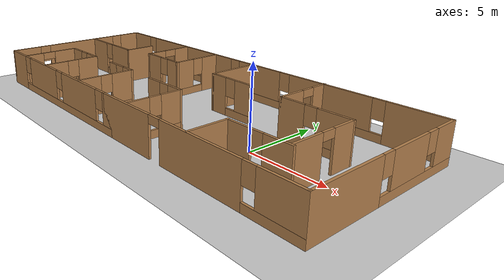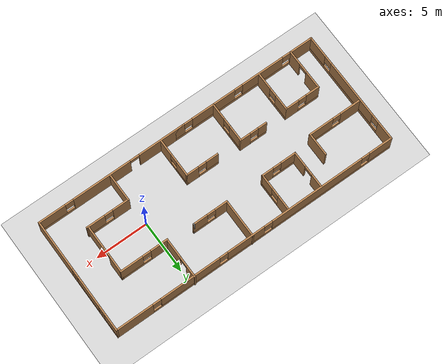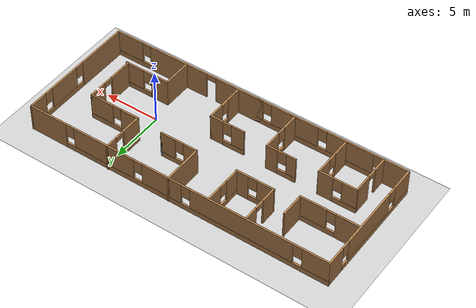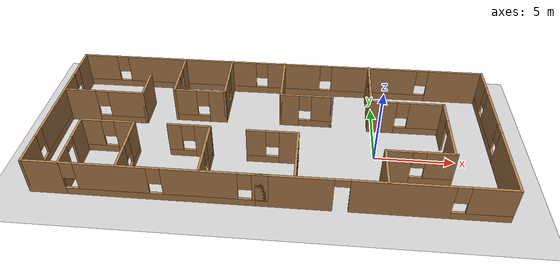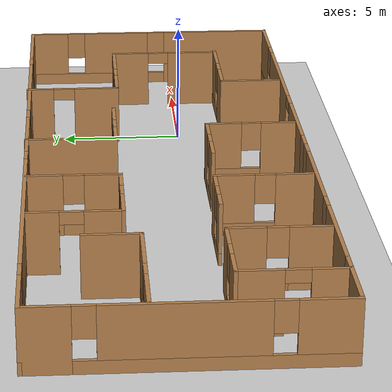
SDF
<sdf version="1.7">
 <world name="default">
  <model name="ground_plane">
   <static>1</static>
   <link name="link">
    <collision name="collision">
     <geometry><plane><normal>0 0 1</normal><size>100 100</size></plane></geometry>
     <surface><friction><ode><mu>100</mu><mu2>50</mu2></ode></friction></surface>
    </collision>
    <visual name="visual">
     <cast_shadows>0</cast_shadows>
     <geometry><plane><normal>0 0 1</normal><size>100 100</size></plane></geometry>
     <material>
      <script><uri>file://media/materials/scripts/gazebo.material</uri><name>Gazebo/Grey</name></script>
     </material>
    </visual>
   </link>
  </model>
  <model name="Building">
   <pose>-6.555 0.971968 0 0 -0 0</pose>
   <link name="Wall_0">
    <pose>6.75 -5.58197 0 0 -0 0</pose>
    <visual name="Wall_0_Visual_0">
     <pose>-5.03607 0 1.25 0 -0 0</pose>
     <geometry><box><size>4.42786 0.15 2.5</size></box></geometry>
     <material>
      <script><uri>file://media/materials/scripts/gazebo.material</uri><name>Gazebo/Wood</name></script>
      <ambient>1 1 1 1</ambient>
     </material>
     <meta><layer>0</layer></meta>
    </visual>
    <collision name="Wall_0_Collision_0">
     <geometry><box><size>4.42786 0.15 2.5</size></box></geometry>
     <pose>-5.03607 0 1.25 0 -0 0</pose>
    </collision>
    <visual name="Wall_0_Visual_1">
     <pose>0.941682 0 1.25 0 -0 0</pose>
     <geometry><box><size>5.72765 0.15 2.5</size></box></geometry>
     <material>
      <script><uri>file://media/materials/scripts/gazebo.material</uri><name>Gazebo/Wood</name></script>
      <ambient>1 1 1 1</ambient>
     </material>
     <meta><layer>0</layer></meta>
    </visual>
    <collision name="Wall_0_Collision_1">
     <geometry><box><size>5.72765 0.15 2.5</size></box></geometry>
     <pose>0.941682 0 1.25 0 -0 0</pose>
    </collision>
    <visual name="Wall_0_Visual_2">
     <pose>5.52775 0 0.25 0 -0 0</pose>
     <geometry><box><size>3.44449 0.15 0.5</size></box></geometry>
     <material>
      <script><uri>file://media/materials/scripts/gazebo.material</uri><name>Gazebo/Wood</name></script>
      <ambient>1 1 1 1</ambient>
     </material>
     <meta><layer>0</layer></meta>
    </visual>
    <collision name="Wall_0_Collision_2">
     <geometry><box><size>3.44449 0.15 0.5</size></box></geometry>
     <pose>5.52775 0 0.25 0 -0 0</pose>
    </collision>
    <visual name="Wall_0_Visual_3">
     <pose>5.92775 0 1.5 0 -0 0</pose>
     <geometry><box><size>2.64449 0.15 2</size></box></geometry>
     <material>
      <script><uri>file://media/materials/scripts/gazebo.material</uri><name>Gazebo/Wood</name></script>
      <ambient>1 1 1 1</ambient>
     </material>
     <meta><layer>0</layer></meta>
    </visual>
    <collision name="Wall_0_Collision_3">
     <geometry><box><size>2.64449 0.15 2</size></box></geometry>
     <pose>5.92775 0 1.5 0 -0 0</pose>
    </collision>
    <visual name="Wall_0_Visual_4">
     <pose>4.20551 0 1.9 0 -0 0</pose>
     <geometry><box><size>0.8 0.15 1.2</size></box></geometry>
     <material>
      <script><uri>file://media/materials/scripts/gazebo.material</uri><name>Gazebo/Wood</name></script>
      <ambient>1 1 1 1</ambient>
     </material>
     <meta><layer>0</layer></meta>
    </visual>
    <collision name="Wall_0_Collision_4">
     <geometry><box><size>0.8 0.15 1.2</size></box></geometry>
     <pose>4.20551 0 1.9 0 -0 0</pose>
    </collision>
    <visual name="Wall_0_Visual_5">
     <pose>-2.37214 0 2.25 0 -0 0</pose>
     <geometry><box><size>0.9 0.15 0.5</size></box></geometry>
     <material>
      <script><uri>file://media/materials/scripts/gazebo.material</uri><name>Gazebo/Wood</name></script>
      <ambient>1 1 1 1</ambient>
     </material>
     <meta><layer>0</layer></meta>
    </visual>
    <collision name="Wall_0_Collision_5">
     <geometry><box><size>0.9 0.15 0.5</size></box></geometry>
     <pose>-2.37214 0 2.25 0 -0 0</pose>
    </collision>
   </link>
   <link name="Wall_10">
    <pose>-8.40885 -3.60792 0 0 -0 1.5708</pose>
    <visual name="Wall_10_Visual_0">
     <pose>-1.16004 0 1.25 0 -0 0</pose>
     <geometry><box><size>1.67992 0.15 2.5</size></box></geometry>
     <material>
      <script><uri>file://media/materials/scripts/gazebo.material</uri><name>Gazebo/Wood</name></script>
      <ambient>1 1 1 1</ambient>
     </material>
     <meta><layer>0</layer></meta>
    </visual>
    <collision name="Wall_10_Collision_0">
     <geometry><box><size>1.67992 0.15 2.5</size></box></geometry>
     <pose>-1.16004 0 1.25 0 -0 0</pose>
    </collision>
    <visual name="Wall_10_Visual_1">
     <pose>0.839961 0 0.25 0 -0 0</pose>
     <geometry><box><size>2.32008 0.15 0.5</size></box></geometry>
     <material>
      <script><uri>file://media/materials/scripts/gazebo.material</uri><name>Gazebo/Wood</name></script>
      <ambient>1 1 1 1</ambient>
     </material>
     <meta><layer>0</layer></meta>
    </visual>
    <collision name="Wall_10_Collision_1">
     <geometry><box><size>2.32008 0.15 0.5</size></box></geometry>
     <pose>0.839961 0 0.25 0 -0 0</pose>
    </collision>
    <visual name="Wall_10_Visual_2">
     <pose>1.23996 0 1.5 0 -0 0</pose>
     <geometry><box><size>1.52008 0.15 2</size></box></geometry>
     <material>
      <script><uri>file://media/materials/scripts/gazebo.material</uri><name>Gazebo/Wood</name></script>
      <ambient>1 1 1 1</ambient>
     </material>
     <meta><layer>0</layer></meta>
    </visual>
    <collision name="Wall_10_Collision_2">
     <geometry><box><size>1.52008 0.15 2</size></box></geometry>
     <pose>1.23996 0 1.5 0 -0 0</pose>
    </collision>
    <visual name="Wall_10_Visual_3">
     <pose>0.079921 0 1.9 0 -0 0</pose>
     <geometry><box><size>0.8 0.15 1.2</size></box></geometry>
     <material>
      <script><uri>file://media/materials/scripts/gazebo.material</uri><name>Gazebo/Wood</name></script>
      <ambient>1 1 1 1</ambient>
     </material>
     <meta><layer>0</layer></meta>
    </visual>
    <collision name="Wall_10_Collision_3">
     <geometry><box><size>0.8 0.15 1.2</size></box></geometry>
     <pose>0.079921 0 1.9 0 -0 0</pose>
    </collision>
   </link>
   <link name="Wall_11">
    <pose>-10.0839 -1.68291 0 0 -0 3.14159</pose>
    <visual name="Wall_11_Visual_0">
     <pose>-1.07939 0 1.25 0 -0 0</pose>
     <geometry><box><size>1.34122 0.15 2.5</size></box></geometry>
     <material>
      <script><uri>file://media/materials/scripts/gazebo.material</uri><name>Gazebo/Wood</name></script>
      <ambient>1 1 1 1</ambient>
     </material>
     <meta><layer>0</layer></meta>
    </visual>
    <collision name="Wall_11_Collision_0">
     <geometry><box><size>1.34122 0.15 2.5</size></box></geometry>
     <pose>-1.07939 0 1.25 0 -0 0</pose>
    </collision>
    <visual name="Wall_11_Visual_1">
     <pose>0.670607 0 0.25 0 -0 0</pose>
     <geometry><box><size>2.15878 0.15 0.5</size></box></geometry>
     <material>
      <script><uri>file://media/materials/scripts/gazebo.material</uri><name>Gazebo/Wood</name></script>
      <ambient>1 1 1 1</ambient>
     </material>
     <meta><layer>0</layer></meta>
    </visual>
    <collision name="Wall_11_Collision_1">
     <geometry><box><size>2.15878 0.15 0.5</size></box></geometry>
     <pose>0.670607 0 0.25 0 -0 0</pose>
    </collision>
    <visual name="Wall_11_Visual_2">
     <pose>1.07061 0 1.5 0 -0 0</pose>
     <geometry><box><size>1.35878 0.15 2</size></box></geometry>
     <material>
      <script><uri>file://media/materials/scripts/gazebo.material</uri><name>Gazebo/Wood</name></script>
      <ambient>1 1 1 1</ambient>
     </material>
     <meta><layer>0</layer></meta>
    </visual>
    <collision name="Wall_11_Collision_2">
     <geometry><box><size>1.35878 0.15 2</size></box></geometry>
     <pose>1.07061 0 1.5 0 -0 0</pose>
    </collision>
    <visual name="Wall_11_Visual_3">
     <pose>-0.008785 0 1.9 0 -0 0</pose>
     <geometry><box><size>0.8 0.15 1.2</size></box></geometry>
     <material>
      <script><uri>file://media/materials/scripts/gazebo.material</uri><name>Gazebo/Wood</name></script>
      <ambient>1 1 1 1</ambient>
     </material>
     <meta><layer>0</layer></meta>
    </visual>
    <collision name="Wall_11_Collision_3">
     <geometry><box><size>0.8 0.15 1.2</size></box></geometry>
     <pose>-0.008785 0 1.9 0 -0 0</pose>
    </collision>
   </link>
   <link name="Wall_13">
    <pose>-3.67474 -3.60792 0 0 -0 1.5708</pose>
    <visual name="Wall_13_Visual_0">
     <pose>-1.20478 0 1.25 0 -0 0</pose>
     <geometry><box><size>1.59043 0.15 2.5</size></box></geometry>
     <material>
      <script><uri>file://media/materials/scripts/gazebo.material</uri><name>Gazebo/Wood</name></script>
      <ambient>1 1 1 1</ambient>
     </material>
     <meta><layer>0</layer></meta>
    </visual>
    <collision name="Wall_13_Collision_0">
     <geometry><box><size>1.59043 0.15 2.5</size></box></geometry>
     <pose>-1.20478 0 1.25 0 -0 0</pose>
    </collision>
    <visual name="Wall_13_Visual_1">
     <pose>0.795215 0 0.25 0 -0 0</pose>
     <geometry><box><size>2.40957 0.15 0.5</size></box></geometry>
     <material>
      <script><uri>file://media/materials/scripts/gazebo.material</uri><name>Gazebo/Wood</name></script>
      <ambient>1 1 1 1</ambient>
     </material>
     <meta><layer>0</layer></meta>
    </visual>
    <collision name="Wall_13_Collision_1">
     <geometry><box><size>2.40957 0.15 0.5</size></box></geometry>
     <pose>0.795215 0 0.25 0 -0 0</pose>
    </collision>
    <visual name="Wall_13_Visual_2">
     <pose>1.19521 0 1.5 0 -0 0</pose>
     <geometry><box><size>1.60957 0.15 2</size></box></geometry>
     <material>
      <script><uri>file://media/materials/scripts/gazebo.material</uri><name>Gazebo/Wood</name></script>
      <ambient>1 1 1 1</ambient>
     </material>
     <meta><layer>0</layer></meta>
    </visual>
    <collision name="Wall_13_Collision_2">
     <geometry><box><size>1.60957 0.15 2</size></box></geometry>
     <pose>1.19521 0 1.5 0 -0 0</pose>
    </collision>
    <visual name="Wall_13_Visual_3">
     <pose>-0.009571 0 1.9 0 -0 0</pose>
     <geometry><box><size>0.8 0.15 1.2</size></box></geometry>
     <material>
      <script><uri>file://media/materials/scripts/gazebo.material</uri><name>Gazebo/Wood</name></script>
      <ambient>1 1 1 1</ambient>
     </material>
     <meta><layer>0</layer></meta>
    </visual>
    <collision name="Wall_13_Collision_3">
     <geometry><box><size>0.8 0.15 1.2</size></box></geometry>
     <pose>-0.009571 0 1.9 0 -0 0</pose>
    </collision>
   </link>
   <link name="Wall_14">
    <pose>-4.97474 -1.68291 0 0 -0 3.14159</pose>
    <visual name="Wall_14_Visual_0">
     <pose>-0.843105 0 1.25 0 -0 0</pose>
     <geometry><box><size>1.06379 0.15 2.5</size></box></geometry>
     <material>
      <script><uri>file://media/materials/scripts/gazebo.material</uri><name>Gazebo/Wood</name></script>
      <ambient>1 1 1 1</ambient>
     </material>
     <meta><layer>0</layer></meta>
    </visual>
    <collision name="Wall_14_Collision_0">
     <geometry><box><size>1.06379 0.15 2.5</size></box></geometry>
     <pose>-0.843105 0 1.25 0 -0 0</pose>
    </collision>
    <visual name="Wall_14_Visual_1">
     <pose>0.531895 0 0.25 0 -0 0</pose>
     <geometry><box><size>1.68621 0.15 0.5</size></box></geometry>
     <material>
      <script><uri>file://media/materials/scripts/gazebo.material</uri><name>Gazebo/Wood</name></script>
      <ambient>1 1 1 1</ambient>
     </material>
     <meta><layer>0</layer></meta>
    </visual>
    <collision name="Wall_14_Collision_1">
     <geometry><box><size>1.68621 0.15 0.5</size></box></geometry>
     <pose>0.531895 0 0.25 0 -0 0</pose>
    </collision>
    <visual name="Wall_14_Visual_2">
     <pose>0.931895 0 1.5 0 -0 0</pose>
     <geometry><box><size>0.886209 0.15 2</size></box></geometry>
     <material>
      <script><uri>file://media/materials/scripts/gazebo.material</uri><name>Gazebo/Wood</name></script>
      <ambient>1 1 1 1</ambient>
     </material>
     <meta><layer>0</layer></meta>
    </visual>
    <collision name="Wall_14_Collision_2">
     <geometry><box><size>0.886209 0.15 2</size></box></geometry>
     <pose>0.931895 0 1.5 0 -0 0</pose>
    </collision>
    <visual name="Wall_14_Visual_3">
     <pose>0.088791 0 1.9 0 -0 0</pose>
     <geometry><box><size>0.8 0.15 1.2</size></box></geometry>
     <material>
      <script><uri>file://media/materials/scripts/gazebo.material</uri><name>Gazebo/Wood</name></script>
      <ambient>1 1 1 1</ambient>
     </material>
     <meta><layer>0</layer></meta>
    </visual>
    <collision name="Wall_14_Collision_3">
     <geometry><box><size>0.8 0.15 1.2</size></box></geometry>
     <pose>0.088791 0 1.9 0 -0 0</pose>
    </collision>
   </link>
   <link name="Wall_16">
    <pose>1.72833 -3.63 0 0 -0 1.5708</pose>
    <visual name="Wall_16_Visual_0">
     <pose>-1.15362 0 1.25 0 -0 0</pose>
     <geometry><box><size>1.44277 0.15 2.5</size></box></geometry>
     <material>
      <script><uri>file://media/materials/scripts/gazebo.material</uri><name>Gazebo/Wood</name></script>
      <ambient>1 1 1 1</ambient>
     </material>
     <meta><layer>0</layer></meta>
    </visual>
    <collision name="Wall_16_Collision_0">
     <geometry><box><size>1.44277 0.15 2.5</size></box></geometry>
     <pose>-1.15362 0 1.25 0 -0 0</pose>
    </collision>
    <visual name="Wall_16_Visual_1">
     <pose>0.721384 0 0.25 0 -0 0</pose>
     <geometry><box><size>2.30723 0.15 0.5</size></box></geometry>
     <material>
      <script><uri>file://media/materials/scripts/gazebo.material</uri><name>Gazebo/Wood</name></script>
      <ambient>1 1 1 1</ambient>
     </material>
     <meta><layer>0</layer></meta>
    </visual>
    <collision name="Wall_16_Collision_1">
     <geometry><box><size>2.30723 0.15 0.5</size></box></geometry>
     <pose>0.721384 0 0.25 0 -0 0</pose>
    </collision>
    <visual name="Wall_16_Visual_2">
     <pose>1.12138 0 1.5 0 -0 0</pose>
     <geometry><box><size>1.50723 0.15 2</size></box></geometry>
     <material>
      <script><uri>file://media/materials/scripts/gazebo.material</uri><name>Gazebo/Wood</name></script>
      <ambient>1 1 1 1</ambient>
     </material>
     <meta><layer>0</layer></meta>
    </visual>
    <collision name="Wall_16_Collision_2">
     <geometry><box><size>1.50723 0.15 2</size></box></geometry>
     <pose>1.12138 0 1.5 0 -0 0</pose>
    </collision>
    <visual name="Wall_16_Visual_3">
     <pose>-0.032232 0 1.9 0 -0 0</pose>
     <geometry><box><size>0.8 0.15 1.2</size></box></geometry>
     <material>
      <script><uri>file://media/materials/scripts/gazebo.material</uri><name>Gazebo/Wood</name></script>
      <ambient>1 1 1 1</ambient>
     </material>
     <meta><layer>0</layer></meta>
    </visual>
    <collision name="Wall_16_Collision_3">
     <geometry><box><size>0.8 0.15 1.2</size></box></geometry>
     <pose>-0.032232 0 1.9 0 -0 0</pose>
    </collision>
   </link>
   <link name="Wall_17">
    <pose>0.17833 -1.83 0 0 -0 3.14159</pose>
    <visual name="Wall_17_Visual_0">
     <pose>-1.00921 0 1.25 0 -0 0</pose>
     <geometry><box><size>1.23159 0.15 2.5</size></box></geometry>
     <material>
      <script><uri>file://media/materials/scripts/gazebo.material</uri><name>Gazebo/Wood</name></script>
      <ambient>1 1 1 1</ambient>
     </material>
     <meta><layer>0</layer></meta>
    </visual>
    <collision name="Wall_17_Collision_0">
     <geometry><box><size>1.23159 0.15 2.5</size></box></geometry>
     <pose>-1.00921 0 1.25 0 -0 0</pose>
    </collision>
    <visual name="Wall_17_Visual_1">
     <pose>0.615794 0 0.25 0 -0 0</pose>
     <geometry><box><size>2.01841 0.15 0.5</size></box></geometry>
     <material>
      <script><uri>file://media/materials/scripts/gazebo.material</uri><name>Gazebo/Wood</name></script>
      <ambient>1 1 1 1</ambient>
     </material>
     <meta><layer>0</layer></meta>
    </visual>
    <collision name="Wall_17_Collision_1">
     <geometry><box><size>2.01841 0.15 0.5</size></box></geometry>
     <pose>0.615794 0 0.25 0 -0 0</pose>
    </collision>
    <visual name="Wall_17_Visual_2">
     <pose>1.01579 0 1.5 0 -0 0</pose>
     <geometry><box><size>1.21841 0.15 2</size></box></geometry>
     <material>
      <script><uri>file://media/materials/scripts/gazebo.material</uri><name>Gazebo/Wood</name></script>
      <ambient>1 1 1 1</ambient>
     </material>
     <meta><layer>0</layer></meta>
    </visual>
    <collision name="Wall_17_Collision_2">
     <geometry><box><size>1.21841 0.15 2</size></box></geometry>
     <pose>1.01579 0 1.5 0 -0 0</pose>
    </collision>
    <visual name="Wall_17_Visual_3">
     <pose>0.006588 0 1.9 0 -0 0</pose>
     <geometry><box><size>0.8 0.15 1.2</size></box></geometry>
     <material>
      <script><uri>file://media/materials/scripts/gazebo.material</uri><name>Gazebo/Wood</name></script>
      <ambient>1 1 1 1</ambient>
     </material>
     <meta><layer>0</layer></meta>
    </visual>
    <collision name="Wall_17_Collision_3">
     <geometry><box><size>0.8 0.15 1.2</size></box></geometry>
     <pose>0.006588 0 1.9 0 -0 0</pose>
    </collision>
   </link>
   <link name="Wall_19">
    <pose>-11.2105 1.31097 0 0 -0 0</pose>
    <visual name="Wall_19_Visual_0">
     <pose>-1.61599 0 1.25 0 -0 0</pose>
     <geometry><box><size>2.01802 0.15 2.5</size></box></geometry>
     <material>
      <script><uri>file://media/materials/scripts/gazebo.material</uri><name>Gazebo/Wood</name></script>
      <ambient>1 1 1 1</ambient>
     </material>
     <meta><layer>0</layer></meta>
    </visual>
    <collision name="Wall_19_Collision_0">
     <geometry><box><size>2.01802 0.15 2.5</size></box></geometry>
     <pose>-1.61599 0 1.25 0 -0 0</pose>
    </collision>
    <visual name="Wall_19_Visual_1">
     <pose>1.00901 0 0.25 0 -0 0</pose>
     <geometry><box><size>3.23198 0.15 0.5</size></box></geometry>
     <material>
      <script><uri>file://media/materials/scripts/gazebo.material</uri><name>Gazebo/Wood</name></script>
      <ambient>1 1 1 1</ambient>
     </material>
     <meta><layer>0</layer></meta>
    </visual>
    <collision name="Wall_19_Collision_1">
     <geometry><box><size>3.23198 0.15 0.5</size></box></geometry>
     <pose>1.00901 0 0.25 0 -0 0</pose>
    </collision>
    <visual name="Wall_19_Visual_2">
     <pose>1.40901 0 1.5 0 -0 0</pose>
     <geometry><box><size>2.43198 0.15 2</size></box></geometry>
     <material>
      <script><uri>file://media/materials/scripts/gazebo.material</uri><name>Gazebo/Wood</name></script>
      <ambient>1 1 1 1</ambient>
     </material>
     <meta><layer>0</layer></meta>
    </visual>
    <collision name="Wall_19_Collision_2">
     <geometry><box><size>2.43198 0.15 2</size></box></geometry>
     <pose>1.40901 0 1.5 0 -0 0</pose>
    </collision>
    <visual name="Wall_19_Visual_3">
     <pose>-0.206982 0 1.9 0 -0 0</pose>
     <geometry><box><size>0.8 0.15 1.2</size></box></geometry>
     <material>
      <script><uri>file://media/materials/scripts/gazebo.material</uri><name>Gazebo/Wood</name></script>
      <ambient>1 1 1 1</ambient>
     </material>
     <meta><layer>0</layer></meta>
    </visual>
    <collision name="Wall_19_Collision_3">
     <geometry><box><size>0.8 0.15 1.2</size></box></geometry>
     <pose>-0.206982 0 1.9 0 -0 0</pose>
    </collision>
   </link>
   <link name="Wall_2">
    <pose>13.925 -0.031968 0 0 -0 1.5708</pose>
    <visual name="Wall_2_Visual_0">
     <pose>-3.17203 0 1.25 0 -0 0</pose>
     <geometry><box><size>4.90593 0.15 2.5</size></box></geometry>
     <material>
      <script><uri>file://media/materials/scripts/gazebo.material</uri><name>Gazebo/Wood</name></script>
      <ambient>1 1 1 1</ambient>
     </material>
     <meta><layer>0</layer></meta>
    </visual>
    <collision name="Wall_2_Collision_0">
     <geometry><box><size>4.90593 0.15 2.5</size></box></geometry>
     <pose>-3.17203 0 1.25 0 -0 0</pose>
    </collision>
    <visual name="Wall_2_Visual_1">
     <pose>2.45297 0 0.25 0 -0 0</pose>
     <geometry><box><size>6.34407 0.15 0.5</size></box></geometry>
     <material>
      <script><uri>file://media/materials/scripts/gazebo.material</uri><name>Gazebo/Wood</name></script>
      <ambient>1 1 1 1</ambient>
     </material>
     <meta><layer>0</layer></meta>
    </visual>
    <collision name="Wall_2_Collision_1">
     <geometry><box><size>6.34407 0.15 0.5</size></box></geometry>
     <pose>2.45297 0 0.25 0 -0 0</pose>
    </collision>
    <visual name="Wall_2_Visual_2">
     <pose>1.58263 0 1.5 0 -0 0</pose>
     <geometry><box><size>3.0034 0.15 2</size></box></geometry>
     <material>
      <script><uri>file://media/materials/scripts/gazebo.material</uri><name>Gazebo/Wood</name></script>
      <ambient>1 1 1 1</ambient>
     </material>
     <meta><layer>0</layer></meta>
    </visual>
    <collision name="Wall_2_Collision_2">
     <geometry><box><size>3.0034 0.15 2</size></box></geometry>
     <pose>1.58263 0 1.5 0 -0 0</pose>
    </collision>
    <visual name="Wall_2_Visual_3">
     <pose>4.75467 0 1.5 0 -0 0</pose>
     <geometry><box><size>1.74066 0.15 2</size></box></geometry>
     <material>
      <script><uri>file://media/materials/scripts/gazebo.material</uri><name>Gazebo/Wood</name></script>
      <ambient>1 1 1 1</ambient>
     </material>
     <meta><layer>0</layer></meta>
    </visual>
    <collision name="Wall_2_Collision_3">
     <geometry><box><size>1.74066 0.15 2</size></box></geometry>
     <pose>4.75467 0 1.5 0 -0 0</pose>
    </collision>
    <visual name="Wall_2_Visual_4">
     <pose>-0.319067 0 1.9 0 -0 0</pose>
     <geometry><box><size>0.8 0.15 1.2</size></box></geometry>
     <material>
      <script><uri>file://media/materials/scripts/gazebo.material</uri><name>Gazebo/Wood</name></script>
      <ambient>1 1 1 1</ambient>
     </material>
     <meta><layer>0</layer></meta>
    </visual>
    <collision name="Wall_2_Collision_4">
     <geometry><box><size>0.8 0.15 1.2</size></box></geometry>
     <pose>-0.319067 0 1.9 0 -0 0</pose>
    </collision>
    <visual name="Wall_2_Visual_5">
     <pose>3.48434 0 1.9 0 -0 0</pose>
     <geometry><box><size>0.8 0.15 1.2</size></box></geometry>
     <material>
      <script><uri>file://media/materials/scripts/gazebo.material</uri><name>Gazebo/Wood</name></script>
      <ambient>1 1 1 1</ambient>
     </material>
     <meta><layer>0</layer></meta>
    </visual>
    <collision name="Wall_2_Collision_5">
     <geometry><box><size>0.8 0.15 1.2</size></box></geometry>
     <pose>3.48434 0 1.9 0 -0 0</pose>
    </collision>
   </link>
   <link name="Wall_20">
    <collision name="Wall_20_Collision">
     <geometry><box><size>2.25 0.15 2.5</size></box></geometry>
     <pose>0 0 1.25 0 -0 0</pose>
    </collision>
    <visual name="Wall_20_Visual">
     <pose>0 0 1.25 0 -0 0</pose>
     <geometry><box><size>2.25 0.15 2.5</size></box></geometry>
     <material>
      <script><uri>file://media/materials/scripts/gazebo.material</uri><name>Gazebo/Wood</name></script>
      <ambient>1 1 1 1</ambient>
     </material>
     <meta><layer>0</layer></meta>
    </visual>
    <pose>-8.66047 2.36097 0 0 -0 1.5708</pose>
   </link>
   <link name="Wall_22">
    <collision name="Wall_22_Collision">
     <geometry><box><size>2.75 0.15 2.5</size></box></geometry>
     <pose>0 0 1.25 0 -0 0</pose>
    </collision>
    <visual name="Wall_22_Visual">
     <pose>0 0 1.25 0 -0 0</pose>
     <geometry><box><size>2.75 0.15 2.5</size></box></geometry>
     <material>
      <script><uri>file://media/materials/scripts/gazebo.material</uri><name>Gazebo/Wood</name></script>
      <ambient>1 1 1 1</ambient>
     </material>
     <meta><layer>0</layer></meta>
    </visual>
    <pose>6.87411 -4.23292 0 0 -0 1.5708</pose>
   </link>
   <link name="Wall_23">
    <pose>8.92411 -2.93291 0 0 -0 0</pose>
    <visual name="Wall_23_Visual_0">
     <pose>-1.29833 0 1.25 0 -0 0</pose>
     <geometry><box><size>1.65334 0.15 2.5</size></box></geometry>
     <material>
      <script><uri>file://media/materials/scripts/gazebo.material</uri><name>Gazebo/Wood</name></script>
      <ambient>1 1 1 1</ambient>
     </material>
     <meta><layer>0</layer></meta>
    </visual>
    <collision name="Wall_23_Collision_0">
     <geometry><box><size>1.65334 0.15 2.5</size></box></geometry>
     <pose>-1.29833 0 1.25 0 -0 0</pose>
    </collision>
    <visual name="Wall_23_Visual_1">
     <pose>0.826669 0 0.25 0 -0 0</pose>
     <geometry><box><size>2.59666 0.15 0.5</size></box></geometry>
     <material>
      <script><uri>file://media/materials/scripts/gazebo.material</uri><name>Gazebo/Wood</name></script>
      <ambient>1 1 1 1</ambient>
     </material>
     <meta><layer>0</layer></meta>
    </visual>
    <collision name="Wall_23_Collision_1">
     <geometry><box><size>2.59666 0.15 0.5</size></box></geometry>
     <pose>0.826669 0 0.25 0 -0 0</pose>
    </collision>
    <visual name="Wall_23_Visual_2">
     <pose>1.22667 0 1.5 0 -0 0</pose>
     <geometry><box><size>1.79666 0.15 2</size></box></geometry>
     <material>
      <script><uri>file://media/materials/scripts/gazebo.material</uri><name>Gazebo/Wood</name></script>
      <ambient>1 1 1 1</ambient>
     </material>
     <meta><layer>0</layer></meta>
    </visual>
    <collision name="Wall_23_Collision_2">
     <geometry><box><size>1.79666 0.15 2</size></box></geometry>
     <pose>1.22667 0 1.5 0 -0 0</pose>
    </collision>
    <visual name="Wall_23_Visual_3">
     <pose>-0.071661 0 1.9 0 -0 0</pose>
     <geometry><box><size>0.8 0.15 1.2</size></box></geometry>
     <material>
      <script><uri>file://media/materials/scripts/gazebo.material</uri><name>Gazebo/Wood</name></script>
      <ambient>1 1 1 1</ambient>
     </material>
     <meta><layer>0</layer></meta>
    </visual>
    <collision name="Wall_23_Collision_3">
     <geometry><box><size>0.8 0.15 1.2</size></box></geometry>
     <pose>-0.071661 0 1.9 0 -0 0</pose>
    </collision>
   </link>
   <link name="Wall_25">
    <pose>-3.31453 3.67905 0 0 -0 -1.5708</pose>
    <visual name="Wall_25_Visual_0">
     <pose>-1.13602 0 1.25 0 -0 0</pose>
     <geometry><box><size>1.47795 0.15 2.5</size></box></geometry>
     <material>
      <script><uri>file://media/materials/scripts/gazebo.material</uri><name>Gazebo/Wood</name></script>
      <ambient>1 1 1 1</ambient>
     </material>
     <meta><layer>0</layer></meta>
    </visual>
    <collision name="Wall_25_Collision_0">
     <geometry><box><size>1.47795 0.15 2.5</size></box></geometry>
     <pose>-1.13602 0 1.25 0 -0 0</pose>
    </collision>
    <visual name="Wall_25_Visual_1">
     <pose>0.738978 0 0.25 0 -0 0</pose>
     <geometry><box><size>2.27204 0.15 0.5</size></box></geometry>
     <material>
      <script><uri>file://media/materials/scripts/gazebo.material</uri><name>Gazebo/Wood</name></script>
      <ambient>1 1 1 1</ambient>
     </material>
     <meta><layer>0</layer></meta>
    </visual>
    <collision name="Wall_25_Collision_1">
     <geometry><box><size>2.27204 0.15 0.5</size></box></geometry>
     <pose>0.738978 0 0.25 0 -0 0</pose>
    </collision>
    <visual name="Wall_25_Visual_2">
     <pose>1.13898 0 1.5 0 -0 0</pose>
     <geometry><box><size>1.47205 0.15 2</size></box></geometry>
     <material>
      <script><uri>file://media/materials/scripts/gazebo.material</uri><name>Gazebo/Wood</name></script>
      <ambient>1 1 1 1</ambient>
     </material>
     <meta><layer>0</layer></meta>
    </visual>
    <collision name="Wall_25_Collision_2">
     <geometry><box><size>1.47205 0.15 2</size></box></geometry>
     <pose>1.13898 0 1.5 0 -0 0</pose>
    </collision>
    <visual name="Wall_25_Visual_3">
     <pose>0.002955 0 1.9 0 -0 0</pose>
     <geometry><box><size>0.8 0.15 1.2</size></box></geometry>
     <material>
      <script><uri>file://media/materials/scripts/gazebo.material</uri><name>Gazebo/Wood</name></script>
      <ambient>1 1 1 1</ambient>
     </material>
     <meta><layer>0</layer></meta>
    </visual>
    <collision name="Wall_25_Collision_3">
     <geometry><box><size>0.8 0.15 1.2</size></box></geometry>
     <pose>0.002955 0 1.9 0 -0 0</pose>
    </collision>
   </link>
   <link name="Wall_26">
    <pose>-4.98953 1.87905 0 0 -0 3.14159</pose>
    <visual name="Wall_26_Visual_0">
     <pose>-1.17224 0 1.25 0 -0 0</pose>
     <geometry><box><size>1.15552 0.15 2.5</size></box></geometry>
     <material>
      <script><uri>file://media/materials/scripts/gazebo.material</uri><name>Gazebo/Wood</name></script>
      <ambient>1 1 1 1</ambient>
     </material>
     <meta><layer>0</layer></meta>
    </visual>
    <collision name="Wall_26_Collision_0">
     <geometry><box><size>1.15552 0.15 2.5</size></box></geometry>
     <pose>-1.17224 0 1.25 0 -0 0</pose>
    </collision>
    <visual name="Wall_26_Visual_1">
     <pose>0.57776 0 0.25 0 -0 0</pose>
     <geometry><box><size>2.34448 0.15 0.5</size></box></geometry>
     <material>
      <script><uri>file://media/materials/scripts/gazebo.material</uri><name>Gazebo/Wood</name></script>
      <ambient>1 1 1 1</ambient>
     </material>
     <meta><layer>0</layer></meta>
    </visual>
    <collision name="Wall_26_Collision_1">
     <geometry><box><size>2.34448 0.15 0.5</size></box></geometry>
     <pose>0.57776 0 0.25 0 -0 0</pose>
    </collision>
    <visual name="Wall_26_Visual_2">
     <pose>0.97776 0 1.5 0 -0 0</pose>
     <geometry><box><size>1.54448 0.15 2</size></box></geometry>
     <material>
      <script><uri>file://media/materials/scripts/gazebo.material</uri><name>Gazebo/Wood</name></script>
      <ambient>1 1 1 1</ambient>
     </material>
     <meta><layer>0</layer></meta>
    </visual>
    <collision name="Wall_26_Collision_2">
     <geometry><box><size>1.54448 0.15 2</size></box></geometry>
     <pose>0.97776 0 1.5 0 -0 0</pose>
    </collision>
    <visual name="Wall_26_Visual_3">
     <pose>-0.19448 0 1.9 0 -0 0</pose>
     <geometry><box><size>0.8 0.15 1.2</size></box></geometry>
     <material>
      <script><uri>file://media/materials/scripts/gazebo.material</uri><name>Gazebo/Wood</name></script>
      <ambient>1 1 1 1</ambient>
     </material>
     <meta><layer>0</layer></meta>
    </visual>
    <collision name="Wall_26_Collision_3">
     <geometry><box><size>0.8 0.15 1.2</size></box></geometry>
     <pose>-0.19448 0 1.9 0 -0 0</pose>
    </collision>
   </link>
   <link name="Wall_29">
    <collision name="Wall_29_Collision">
     <geometry><box><size>3.75 0.15 2.5</size></box></geometry>
     <pose>0 0 1.25 0 -0 0</pose>
    </collision>
    <visual name="Wall_29_Visual">
     <pose>0 0 1.25 0 -0 0</pose>
     <geometry><box><size>3.75 0.15 2.5</size></box></geometry>
     <material>
      <script><uri>file://media/materials/scripts/gazebo.material</uri><name>Gazebo/Wood</name></script>
      <ambient>1 1 1 1</ambient>
     </material>
     <meta><layer>0</layer></meta>
    </visual>
    <pose>0.396823 3.75285 0 0 -0 -1.5708</pose>
   </link>
   <link name="Wall_3">
    <pose>0 5.51803 0 0 -0 3.14159</pose>
    <visual name="Wall_3_Visual_0">
     <pose>-12.1855 0 1.25 0 -0 0</pose>
     <geometry><box><size>3.6289 0.15 2.5</size></box></geometry>
     <material>
      <script><uri>file://media/materials/scripts/gazebo.material</uri><name>Gazebo/Wood</name></script>
      <ambient>1 1 1 1</ambient>
     </material>
     <meta><layer>0</layer></meta>
    </visual>
    <collision name="Wall_3_Collision_0">
     <geometry><box><size>3.6289 0.15 2.5</size></box></geometry>
     <pose>-12.1855 0 1.25 0 -0 0</pose>
    </collision>
    <visual name="Wall_3_Visual_1">
     <pose>1.81445 0 0.25 0 -0 0</pose>
     <geometry><box><size>24.3711 0.15 0.5</size></box></geometry>
     <material>
      <script><uri>file://media/materials/scripts/gazebo.material</uri><name>Gazebo/Wood</name></script>
      <ambient>1 1 1 1</ambient>
     </material>
     <meta><layer>0</layer></meta>
    </visual>
    <collision name="Wall_3_Collision_1">
     <geometry><box><size>24.3711 0.15 0.5</size></box></geometry>
     <pose>1.81445 0 0.25 0 -0 0</pose>
    </collision>
    <visual name="Wall_3_Visual_2">
     <pose>-6.63753 0 1.5 0 -0 0</pose>
     <geometry><box><size>5.86714 0.15 2</size></box></geometry>
     <material>
      <script><uri>file://media/materials/scripts/gazebo.material</uri><name>Gazebo/Wood</name></script>
      <ambient>1 1 1 1</ambient>
     </material>
     <meta><layer>0</layer></meta>
    </visual>
    <collision name="Wall_3_Collision_2">
     <geometry><box><size>5.86714 0.15 2</size></box></geometry>
     <pose>-6.63753 0 1.5 0 -0 0</pose>
    </collision>
    <visual name="Wall_3_Visual_3">
     <pose>-1.04429 0 1.5 0 -0 0</pose>
     <geometry><box><size>3.71934 0.15 2</size></box></geometry>
     <material>
      <script><uri>file://media/materials/scripts/gazebo.material</uri><name>Gazebo/Wood</name></script>
      <ambient>1 1 1 1</ambient>
     </material>
     <meta><layer>0</layer></meta>
    </visual>
    <collision name="Wall_3_Collision_3">
     <geometry><box><size>3.71934 0.15 2</size></box></geometry>
     <pose>-1.04429 0 1.5 0 -0 0</pose>
    </collision>
    <visual name="Wall_3_Visual_4">
     <pose>6.22692 0 1.5 0 -0 0</pose>
     <geometry><box><size>9.22308 0.15 2</size></box></geometry>
     <material>
      <script><uri>file://media/materials/scripts/gazebo.material</uri><name>Gazebo/Wood</name></script>
      <ambient>1 1 1 1</ambient>
     </material>
     <meta><layer>0</layer></meta>
    </visual>
    <collision name="Wall_3_Collision_4">
     <geometry><box><size>9.22308 0.15 2</size></box></geometry>
     <pose>6.22692 0 1.5 0 -0 0</pose>
    </collision>
    <visual name="Wall_3_Visual_5">
     <pose>12.8192 0 1.5 0 -0 0</pose>
     <geometry><box><size>2.36154 0.15 2</size></box></geometry>
     <material>
      <script><uri>file://media/materials/scripts/gazebo.material</uri><name>Gazebo/Wood</name></script>
      <ambient>1 1 1 1</ambient>
     </material>
     <meta><layer>0</layer></meta>
    </visual>
    <collision name="Wall_3_Collision_5">
     <geometry><box><size>2.36154 0.15 2</size></box></geometry>
     <pose>12.8192 0 1.5 0 -0 0</pose>
    </collision>
    <visual name="Wall_3_Visual_6">
     <pose>-9.9711 0 1.9 0 -0 0</pose>
     <geometry><box><size>0.8 0.15 1.2</size></box></geometry>
     <material>
      <script><uri>file://media/materials/scripts/gazebo.material</uri><name>Gazebo/Wood</name></script>
      <ambient>1 1 1 1</ambient>
     </material>
     <meta><layer>0</layer></meta>
    </visual>
    <collision name="Wall_3_Collision_6">
     <geometry><box><size>0.8 0.15 1.2</size></box></geometry>
     <pose>-9.9711 0 1.9 0 -0 0</pose>
    </collision>
    <visual name="Wall_3_Visual_7">
     <pose>-3.30396 0 1.9 0 -0 0</pose>
     <geometry><box><size>0.8 0.15 1.2</size></box></geometry>
     <material>
      <script><uri>file://media/materials/scripts/gazebo.material</uri><name>Gazebo/Wood</name></script>
      <ambient>1 1 1 1</ambient>
     </material>
     <meta><layer>0</layer></meta>
    </visual>
    <collision name="Wall_3_Collision_7">
     <geometry><box><size>0.8 0.15 1.2</size></box></geometry>
     <pose>-3.30396 0 1.9 0 -0 0</pose>
    </collision>
    <visual name="Wall_3_Visual_8">
     <pose>1.21538 0 1.9 0 -0 0</pose>
     <geometry><box><size>0.8 0.15 1.2</size></box></geometry>
     <material>
      <script><uri>file://media/materials/scripts/gazebo.material</uri><name>Gazebo/Wood</name></script>
      <ambient>1 1 1 1</ambient>
     </material>
     <meta><layer>0</layer></meta>
    </visual>
    <collision name="Wall_3_Collision_8">
     <geometry><box><size>0.8 0.15 1.2</size></box></geometry>
     <pose>1.21538 0 1.9 0 -0 0</pose>
    </collision>
    <visual name="Wall_3_Visual_9">
     <pose>11.2385 0 1.9 0 -0 0</pose>
     <geometry><box><size>0.8 0.15 1.2</size></box></geometry>
     <material>
      <script><uri>file://media/materials/scripts/gazebo.material</uri><name>Gazebo/Wood</name></script>
      <ambient>1 1 1 1</ambient>
     </material>
     <meta><layer>0</layer></meta>
    </visual>
    <collision name="Wall_3_Collision_9">
     <geometry><box><size>0.8 0.15 1.2</size></box></geometry>
     <pose>11.2385 0 1.9 0 -0 0</pose>
    </collision>
   </link>
   <link name="Wall_30">
    <pose>2.07182 1.95285 0 0 -0 0</pose>
    <visual name="Wall_30_Visual_0">
     <pose>-1.10775 0 1.25 0 -0 0</pose>
     <geometry><box><size>1.2845 0.15 2.5</size></box></geometry>
     <material>
      <script><uri>file://media/materials/scripts/gazebo.material</uri><name>Gazebo/Wood</name></script>
      <ambient>1 1 1 1</ambient>
     </material>
     <meta><layer>0</layer></meta>
    </visual>
    <collision name="Wall_30_Collision_0">
     <geometry><box><size>1.2845 0.15 2.5</size></box></geometry>
     <pose>-1.10775 0 1.25 0 -0 0</pose>
    </collision>
    <visual name="Wall_30_Visual_1">
     <pose>0.642251 0 0.25 0 -0 0</pose>
     <geometry><box><size>2.2155 0.15 0.5</size></box></geometry>
     <material>
      <script><uri>file://media/materials/scripts/gazebo.material</uri><name>Gazebo/Wood</name></script>
      <ambient>1 1 1 1</ambient>
     </material>
     <meta><layer>0</layer></meta>
    </visual>
    <collision name="Wall_30_Collision_1">
     <geometry><box><size>2.2155 0.15 0.5</size></box></geometry>
     <pose>0.642251 0 0.25 0 -0 0</pose>
    </collision>
    <visual name="Wall_30_Visual_2">
     <pose>1.04225 0 1.5 0 -0 0</pose>
     <geometry><box><size>1.4155 0.15 2</size></box></geometry>
     <material>
      <script><uri>file://media/materials/scripts/gazebo.material</uri><name>Gazebo/Wood</name></script>
      <ambient>1 1 1 1</ambient>
     </material>
     <meta><layer>0</layer></meta>
    </visual>
    <collision name="Wall_30_Collision_2">
     <geometry><box><size>1.4155 0.15 2</size></box></geometry>
     <pose>1.04225 0 1.5 0 -0 0</pose>
    </collision>
    <visual name="Wall_30_Visual_3">
     <pose>-0.065499 0 1.9 0 -0 0</pose>
     <geometry><box><size>0.8 0.15 1.2</size></box></geometry>
     <material>
      <script><uri>file://media/materials/scripts/gazebo.material</uri><name>Gazebo/Wood</name></script>
      <ambient>1 1 1 1</ambient>
     </material>
     <meta><layer>0</layer></meta>
    </visual>
    <collision name="Wall_30_Collision_3">
     <geometry><box><size>0.8 0.15 1.2</size></box></geometry>
     <pose>-0.065499 0 1.9 0 -0 0</pose>
    </collision>
   </link>
   <link name="Wall_31">
    <collision name="Wall_31_Collision">
     <geometry><box><size>0.15 0.15 2.5</size></box></geometry>
     <pose>0 0 1.25 0 -0 0</pose>
    </collision>
    <visual name="Wall_31_Visual">
     <pose>0 0 1.25 0 -0 0</pose>
     <geometry><box><size>0.15 0.15 2.5</size></box></geometry>
     <material>
      <script><uri>file://media/materials/scripts/gazebo.material</uri><name>Gazebo/Grey</name></script>
      <ambient>1 1 1 1</ambient>
     </material>
     <meta><layer>0</layer></meta>
    </visual>
    <pose>3.74682 1.95285 0 0 -0 0</pose>
   </link>
   <link name="Wall_33">
    <pose>10.8566 -0.568032 0 0 -0 -1.5708</pose>
    <visual name="Wall_33_Visual_0">
     <pose>-1.54337 0 1.25 0 -0 0</pose>
     <geometry><box><size>1.66326 0.15 2.5</size></box></geometry>
     <material>
      <script><uri>file://media/materials/scripts/gazebo.material</uri><name>Gazebo/Wood</name></script>
      <ambient>1 1 1 1</ambient>
     </material>
     <meta><layer>0</layer></meta>
    </visual>
    <collision name="Wall_33_Collision_0">
     <geometry><box><size>1.66326 0.15 2.5</size></box></geometry>
     <pose>-1.54337 0 1.25 0 -0 0</pose>
    </collision>
    <visual name="Wall_33_Visual_1">
     <pose>1.28163 0 1.25 0 -0 0</pose>
     <geometry><box><size>2.18674 0.15 2.5</size></box></geometry>
     <material>
      <script><uri>file://media/materials/scripts/gazebo.material</uri><name>Gazebo/Wood</name></script>
      <ambient>1 1 1 1</ambient>
     </material>
     <meta><layer>0</layer></meta>
    </visual>
    <collision name="Wall_33_Collision_1">
     <geometry><box><size>2.18674 0.15 2.5</size></box></geometry>
     <pose>1.28163 0 1.25 0 -0 0</pose>
    </collision>
    <visual name="Wall_33_Visual_2">
     <pose>-0.261744 0 2.25 0 -0 0</pose>
     <geometry><box><size>0.9 0.15 0.5</size></box></geometry>
     <material>
      <script><uri>file://media/materials/scripts/gazebo.material</uri><name>Gazebo/Wood</name></script>
      <ambient>1 1 1 1</ambient>
     </material>
     <meta><layer>0</layer></meta>
    </visual>
    <collision name="Wall_33_Collision_2">
     <geometry><box><size>0.9 0.15 0.5</size></box></geometry>
     <pose>-0.261744 0 2.25 0 -0 0</pose>
    </collision>
   </link>
   <link name="Wall_36">
    <pose>-6.66453 3.67905 0 0 -0 1.5708</pose>
    <visual name="Wall_36_Visual_0">
     <pose>-1.11923 0 1.25 0 -0 0</pose>
     <geometry><box><size>1.51154 0.15 2.5</size></box></geometry>
     <material>
      <script><uri>file://media/materials/scripts/gazebo.material</uri><name>Gazebo/Wood</name></script>
      <ambient>1 1 1 1</ambient>
     </material>
     <meta><layer>0</layer></meta>
    </visual>
    <collision name="Wall_36_Collision_0">
     <geometry><box><size>1.51154 0.15 2.5</size></box></geometry>
     <pose>-1.11923 0 1.25 0 -0 0</pose>
    </collision>
    <visual name="Wall_36_Visual_1">
     <pose>1.20577 0 1.25 0 -0 0</pose>
     <geometry><box><size>1.33846 0.15 2.5</size></box></geometry>
     <material>
      <script><uri>file://media/materials/scripts/gazebo.material</uri><name>Gazebo/Wood</name></script>
      <ambient>1 1 1 1</ambient>
     </material>
     <meta><layer>0</layer></meta>
    </visual>
    <collision name="Wall_36_Collision_1">
     <geometry><box><size>1.33846 0.15 2.5</size></box></geometry>
     <pose>1.20577 0 1.25 0 -0 0</pose>
    </collision>
    <visual name="Wall_36_Visual_2">
     <pose>0.086536 0 2.25 0 -0 0</pose>
     <geometry><box><size>0.9 0.15 0.5</size></box></geometry>
     <material>
      <script><uri>file://media/materials/scripts/gazebo.material</uri><name>Gazebo/Wood</name></script>
      <ambient>1 1 1 1</ambient>
     </material>
     <meta><layer>0</layer></meta>
    </visual>
    <collision name="Wall_36_Collision_2">
     <geometry><box><size>0.9 0.15 0.5</size></box></geometry>
     <pose>0.086536 0 2.25 0 -0 0</pose>
    </collision>
   </link>
   <link name="Wall_38">
    <pose>-11.7589 -3.60792 0 0 -0 -1.5708</pose>
    <visual name="Wall_38_Visual_0">
     <pose>-1.13072 0 1.25 0 -0 0</pose>
     <geometry><box><size>1.73855 0.15 2.5</size></box></geometry>
     <material>
      <script><uri>file://media/materials/scripts/gazebo.material</uri><name>Gazebo/Wood</name></script>
      <ambient>1 1 1 1</ambient>
     </material>
     <meta><layer>0</layer></meta>
    </visual>
    <collision name="Wall_38_Collision_0">
     <geometry><box><size>1.73855 0.15 2.5</size></box></geometry>
     <pose>-1.13072 0 1.25 0 -0 0</pose>
    </collision>
    <visual name="Wall_38_Visual_1">
     <pose>1.31928 0 1.25 0 -0 0</pose>
     <geometry><box><size>1.36145 0.15 2.5</size></box></geometry>
     <material>
      <script><uri>file://media/materials/scripts/gazebo.material</uri><name>Gazebo/Wood</name></script>
      <ambient>1 1 1 1</ambient>
     </material>
     <meta><layer>0</layer></meta>
    </visual>
    <collision name="Wall_38_Collision_1">
     <geometry><box><size>1.36145 0.15 2.5</size></box></geometry>
     <pose>1.31928 0 1.25 0 -0 0</pose>
    </collision>
    <visual name="Wall_38_Visual_2">
     <pose>0.188554 0 2.25 0 -0 0</pose>
     <geometry><box><size>0.9 0.15 0.5</size></box></geometry>
     <material>
      <script><uri>file://media/materials/scripts/gazebo.material</uri><name>Gazebo/Wood</name></script>
      <ambient>1 1 1 1</ambient>
     </material>
     <meta><layer>0</layer></meta>
    </visual>
    <collision name="Wall_38_Collision_2">
     <geometry><box><size>0.9 0.15 0.5</size></box></geometry>
     <pose>0.188554 0 2.25 0 -0 0</pose>
    </collision>
   </link>
   <link name="Wall_4">
    <pose>-13.925 -0.031968 0 0 -0 -1.5708</pose>
    <visual name="Wall_4_Visual_0">
     <pose>-4.73229 0 1.25 0 -0 0</pose>
     <geometry><box><size>1.78541 0.15 2.5</size></box></geometry>
     <material>
      <script><uri>file://media/materials/scripts/gazebo.material</uri><name>Gazebo/Wood</name></script>
      <ambient>1 1 1 1</ambient>
     </material>
     <meta><layer>0</layer></meta>
    </visual>
    <collision name="Wall_4_Collision_0">
     <geometry><box><size>1.78541 0.15 2.5</size></box></geometry>
     <pose>-4.73229 0 1.25 0 -0 0</pose>
    </collision>
    <visual name="Wall_4_Visual_1">
     <pose>0.892705 0 0.25 0 -0 0</pose>
     <geometry><box><size>9.46459 0.15 0.5</size></box></geometry>
     <material>
      <script><uri>file://media/materials/scripts/gazebo.material</uri><name>Gazebo/Wood</name></script>
      <ambient>1 1 1 1</ambient>
     </material>
     <meta><layer>0</layer></meta>
    </visual>
    <collision name="Wall_4_Collision_1">
     <geometry><box><size>9.46459 0.15 0.5</size></box></geometry>
     <pose>0.892705 0 0.25 0 -0 0</pose>
    </collision>
    <visual name="Wall_4_Visual_2">
     <pose>-0.173138 0 1.5 0 -0 0</pose>
     <geometry><box><size>5.7329 0.15 2</size></box></geometry>
     <material>
      <script><uri>file://media/materials/scripts/gazebo.material</uri><name>Gazebo/Wood</name></script>
      <ambient>1 1 1 1</ambient>
     </material>
     <meta><layer>0</layer></meta>
    </visual>
    <collision name="Wall_4_Collision_2">
     <geometry><box><size>5.7329 0.15 2</size></box></geometry>
     <pose>-0.173138 0 1.5 0 -0 0</pose>
    </collision>
    <visual name="Wall_4_Visual_3">
     <pose>4.55916 0 1.5 0 -0 0</pose>
     <geometry><box><size>2.13169 0.15 2</size></box></geometry>
     <material>
      <script><uri>file://media/materials/scripts/gazebo.material</uri><name>Gazebo/Wood</name></script>
      <ambient>1 1 1 1</ambient>
     </material>
     <meta><layer>0</layer></meta>
    </visual>
    <collision name="Wall_4_Collision_3">
     <geometry><box><size>2.13169 0.15 2</size></box></geometry>
     <pose>4.55916 0 1.5 0 -0 0</pose>
    </collision>
    <visual name="Wall_4_Visual_4">
     <pose>-3.43959 0 1.9 0 -0 0</pose>
     <geometry><box><size>0.8 0.15 1.2</size></box></geometry>
     <material>
      <script><uri>file://media/materials/scripts/gazebo.material</uri><name>Gazebo/Wood</name></script>
      <ambient>1 1 1 1</ambient>
     </material>
     <meta><layer>0</layer></meta>
    </visual>
    <collision name="Wall_4_Collision_4">
     <geometry><box><size>0.8 0.15 1.2</size></box></geometry>
     <pose>-3.43959 0 1.9 0 -0 0</pose>
    </collision>
    <visual name="Wall_4_Visual_5">
     <pose>3.09331 0 1.9 0 -0 0</pose>
     <geometry><box><size>0.8 0.15 1.2</size></box></geometry>
     <material>
      <script><uri>file://media/materials/scripts/gazebo.material</uri><name>Gazebo/Wood</name></script>
      <ambient>1 1 1 1</ambient>
     </material>
     <meta><layer>0</layer></meta>
    </visual>
    <collision name="Wall_4_Collision_5">
     <geometry><box><size>0.8 0.15 1.2</size></box></geometry>
     <pose>3.09331 0 1.9 0 -0 0</pose>
    </collision>
   </link>
   <link name="Wall_5">
    <pose>-6.875 -5.58197 0 0 -0 0</pose>
    <visual name="Wall_5_Visual_0">
     <pose>-5.9666 0 1.25 0 -0 0</pose>
     <geometry><box><size>2.31679 0.15 2.5</size></box></geometry>
     <material>
      <script><uri>file://media/materials/scripts/gazebo.material</uri><name>Gazebo/Wood</name></script>
      <ambient>1 1 1 1</ambient>
     </material>
     <meta><layer>0</layer></meta>
    </visual>
    <collision name="Wall_5_Collision_0">
     <geometry><box><size>2.31679 0.15 2.5</size></box></geometry>
     <pose>-5.9666 0 1.25 0 -0 0</pose>
    </collision>
    <visual name="Wall_5_Visual_1">
     <pose>1.1584 0 0.25 0 -0 0</pose>
     <geometry><box><size>11.9332 0.15 0.5</size></box></geometry>
     <material>
      <script><uri>file://media/materials/scripts/gazebo.material</uri><name>Gazebo/Wood</name></script>
      <ambient>1 1 1 1</ambient>
     </material>
     <meta><layer>0</layer></meta>
    </visual>
    <collision name="Wall_5_Collision_1">
     <geometry><box><size>11.9332 0.15 0.5</size></box></geometry>
     <pose>1.1584 0 0.25 0 -0 0</pose>
    </collision>
    <visual name="Wall_5_Visual_2">
     <pose>-1.90244 0 1.5 0 -0 0</pose>
     <geometry><box><size>4.21154 0.15 2</size></box></geometry>
     <material>
      <script><uri>file://media/materials/scripts/gazebo.material</uri><name>Gazebo/Wood</name></script>
      <ambient>1 1 1 1</ambient>
     </material>
     <meta><layer>0</layer></meta>
    </visual>
    <collision name="Wall_5_Collision_2">
     <geometry><box><size>4.21154 0.15 2</size></box></geometry>
     <pose>-1.90244 0 1.5 0 -0 0</pose>
    </collision>
    <visual name="Wall_5_Visual_3">
     <pose>3.1986 0 1.5 0 -0 0</pose>
     <geometry><box><size>4.39053 0.15 2</size></box></geometry>
     <material>
      <script><uri>file://media/materials/scripts/gazebo.material</uri><name>Gazebo/Wood</name></script>
      <ambient>1 1 1 1</ambient>
     </material>
     <meta><layer>0</layer></meta>
    </visual>
    <collision name="Wall_5_Collision_3">
     <geometry><box><size>4.39053 0.15 2</size></box></geometry>
     <pose>3.1986 0 1.5 0 -0 0</pose>
    </collision>
    <visual name="Wall_5_Visual_4">
     <pose>6.65943 0 1.5 0 -0 0</pose>
     <geometry><box><size>0.931142 0.15 2</size></box></geometry>
     <material>
      <script><uri>file://media/materials/scripts/gazebo.material</uri><name>Gazebo/Wood</name></script>
      <ambient>1 1 1 1</ambient>
     </material>
     <meta><layer>0</layer></meta>
    </visual>
    <collision name="Wall_5_Collision_4">
     <geometry><box><size>0.931142 0.15 2</size></box></geometry>
     <pose>6.65943 0 1.5 0 -0 0</pose>
    </collision>
    <visual name="Wall_5_Visual_5">
     <pose>-4.40821 0 1.9 0 -0 0</pose>
     <geometry><box><size>0.8 0.15 1.2</size></box></geometry>
     <material>
      <script><uri>file://media/materials/scripts/gazebo.material</uri><name>Gazebo/Wood</name></script>
      <ambient>1 1 1 1</ambient>
     </material>
     <meta><layer>0</layer></meta>
    </visual>
    <collision name="Wall_5_Collision_5">
     <geometry><box><size>0.8 0.15 1.2</size></box></geometry>
     <pose>-4.40821 0 1.9 0 -0 0</pose>
    </collision>
    <visual name="Wall_5_Visual_6">
     <pose>0.603333 0 1.9 0 -0 0</pose>
     <geometry><box><size>0.8 0.15 1.2</size></box></geometry>
     <material>
      <script><uri>file://media/materials/scripts/gazebo.material</uri><name>Gazebo/Wood</name></script>
      <ambient>1 1 1 1</ambient>
     </material>
     <meta><layer>0</layer></meta>
    </visual>
    <collision name="Wall_5_Collision_6">
     <geometry><box><size>0.8 0.15 1.2</size></box></geometry>
     <pose>0.603333 0 1.9 0 -0 0</pose>
    </collision>
    <visual name="Wall_5_Visual_7">
     <pose>5.79386 0 1.9 0 -0 0</pose>
     <geometry><box><size>0.8 0.15 1.2</size></box></geometry>
     <material>
      <script><uri>file://media/materials/scripts/gazebo.material</uri><name>Gazebo/Wood</name></script>
      <ambient>1 1 1 1</ambient>
     </material>
     <meta><layer>0</layer></meta>
    </visual>
    <collision name="Wall_5_Collision_7">
     <geometry><box><size>0.8 0.15 1.2</size></box></geometry>
     <pose>5.79386 0 1.9 0 -0 0</pose>
    </collision>
   </link>
   <link name="Wall_7">
    <pose>6.25662 3.65697 0 0 -0 -1.5708</pose>
    <visual name="Wall_7_Visual_0">
     <pose>-1.41355 0 1.25 0 -0 0</pose>
     <geometry><box><size>1.1729 0.15 2.5</size></box></geometry>
     <material>
      <script><uri>file://media/materials/scripts/gazebo.material</uri><name>Gazebo/Wood</name></script>
      <ambient>1 1 1 1</ambient>
     </material>
     <meta><layer>0</layer></meta>
    </visual>
    <collision name="Wall_7_Collision_0">
     <geometry><box><size>1.1729 0.15 2.5</size></box></geometry>
     <pose>-1.41355 0 1.25 0 -0 0</pose>
    </collision>
    <visual name="Wall_7_Visual_1">
     <pose>1.03645 0 1.25 0 -0 0</pose>
     <geometry><box><size>1.9271 0.15 2.5</size></box></geometry>
     <material>
      <script><uri>file://media/materials/scripts/gazebo.material</uri><name>Gazebo/Wood</name></script>
      <ambient>1 1 1 1</ambient>
     </material>
     <meta><layer>0</layer></meta>
    </visual>
    <collision name="Wall_7_Collision_1">
     <geometry><box><size>1.9271 0.15 2.5</size></box></geometry>
     <pose>1.03645 0 1.25 0 -0 0</pose>
    </collision>
    <visual name="Wall_7_Visual_2">
     <pose>-0.377097 0 2.25 0 -0 0</pose>
     <geometry><box><size>0.9 0.15 0.5</size></box></geometry>
     <material>
      <script><uri>file://media/materials/scripts/gazebo.material</uri><name>Gazebo/Wood</name></script>
      <ambient>1 1 1 1</ambient>
     </material>
     <meta><layer>0</layer></meta>
    </visual>
    <collision name="Wall_7_Collision_2">
     <geometry><box><size>0.9 0.15 0.5</size></box></geometry>
     <pose>-0.377097 0 2.25 0 -0 0</pose>
    </collision>
   </link>
   <link name="Wall_8">
    <pose>8.55662 1.73197 0 0 -0 0</pose>
    <visual name="Wall_8_Visual_0">
     <pose>-1.50806 0 1.25 0 -0 0</pose>
     <geometry><box><size>1.73388 0.15 2.5</size></box></geometry>
     <material>
      <script><uri>file://media/materials/scripts/gazebo.material</uri><name>Gazebo/Wood</name></script>
      <ambient>1 1 1 1</ambient>
     </material>
     <meta><layer>0</layer></meta>
    </visual>
    <collision name="Wall_8_Collision_0">
     <geometry><box><size>1.73388 0.15 2.5</size></box></geometry>
     <pose>-1.50806 0 1.25 0 -0 0</pose>
    </collision>
    <visual name="Wall_8_Visual_1">
     <pose>0.866941 0 0.25 0 -0 0</pose>
     <geometry><box><size>3.01612 0.15 0.5</size></box></geometry>
     <material>
      <script><uri>file://media/materials/scripts/gazebo.material</uri><name>Gazebo/Wood</name></script>
      <ambient>1 1 1 1</ambient>
     </material>
     <meta><layer>0</layer></meta>
    </visual>
    <collision name="Wall_8_Collision_1">
     <geometry><box><size>3.01612 0.15 0.5</size></box></geometry>
     <pose>0.866941 0 0.25 0 -0 0</pose>
    </collision>
    <visual name="Wall_8_Visual_2">
     <pose>1.26694 0 1.5 0 -0 0</pose>
     <geometry><box><size>2.21612 0.15 2</size></box></geometry>
     <material>
      <script><uri>file://media/materials/scripts/gazebo.material</uri><name>Gazebo/Wood</name></script>
      <ambient>1 1 1 1</ambient>
     </material>
     <meta><layer>0</layer></meta>
    </visual>
    <collision name="Wall_8_Collision_2">
     <geometry><box><size>2.21612 0.15 2</size></box></geometry>
     <pose>1.26694 0 1.5 0 -0 0</pose>
    </collision>
    <visual name="Wall_8_Visual_3">
     <pose>-0.241119 0 1.9 0 -0 0</pose>
     <geometry><box><size>0.8 0.15 1.2</size></box></geometry>
     <material>
      <script><uri>file://media/materials/scripts/gazebo.material</uri><name>Gazebo/Wood</name></script>
      <ambient>1 1 1 1</ambient>
     </material>
     <meta><layer>0</layer></meta>
    </visual>
    <collision name="Wall_8_Collision_3">
     <geometry><box><size>0.8 0.15 1.2</size></box></geometry>
     <pose>-0.241119 0 1.9 0 -0 0</pose>
    </collision>
   </link>
   <static>1</static>
  </model>
 </world>
</sdf>
